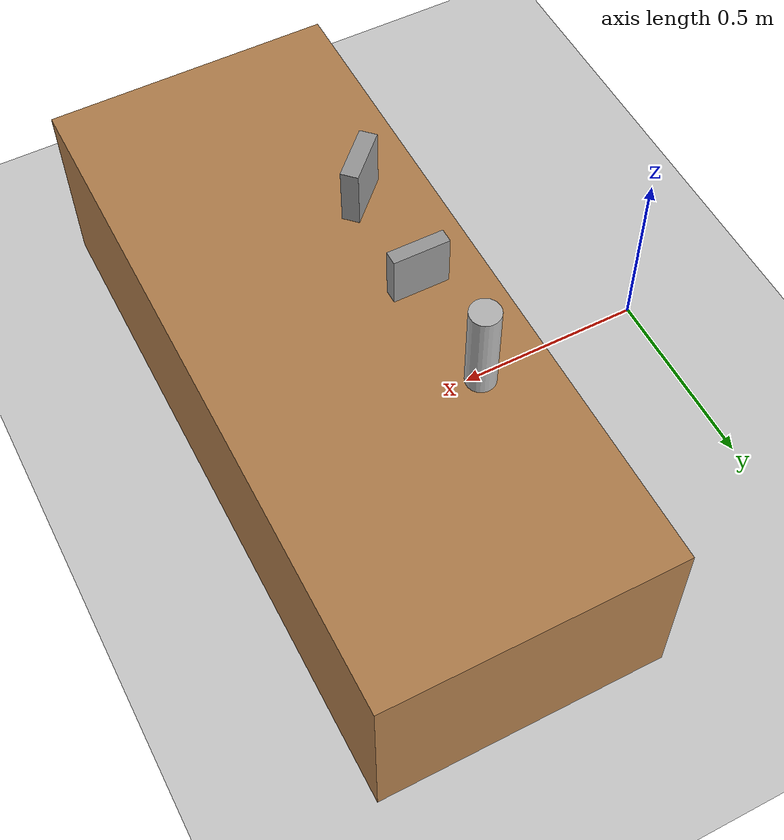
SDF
<sdf version="1.3">
 <world name="default">
  <light name="sun" type="directional">
   <pose>0.000000 0.000000 10.000000 0.000000 0.000000 0.000000</pose>
   <diffuse>0.800000 0.800000 0.800000 1.000000</diffuse>
   <specular>0.100000 0.100000 0.100000 1.000000</specular>
   <attenuation>
    <range>1000.000000</range>
    <constant>0.900000</constant>
    <linear>0.010000</linear>
    <quadratic>0.001000</quadratic>
   </attenuation>
   <direction>-0.500000 0.500000 -1.000000</direction>
  </light>
  <model name="ground_plane">
   <static>1</static>
   <link name="link">
    <collision name="collision">
     <geometry>
      <plane><normal>0.000000 0.000000 1.000000</normal><size>100.000000 100.000000</size></plane>
     </geometry>
     <surface><friction><ode><mu>100.000000</mu><mu2>50.000000</mu2></ode></friction></surface>
    </collision>
    <visual name="visual">
     <cast_shadows>0</cast_shadows>
     <geometry>
      <plane><normal>0.000000 0.000000 1.000000</normal><size>100.000000 100.000000</size></plane>
     </geometry>
     <material>
      <script><uri>file://media/materials/scripts/gazebo.material</uri><name>Gazebo/Grey</name></script>
     </material>
    </visual>
    <velocity_decay><linear>0.000000</linear><angular>0.000000</angular></velocity_decay>
   </link>
  </model>
  <physics type="ode">
   <update_rate>1000.000000</update_rate>
   <gravity>0.000000 0.000000 -9.800000</gravity>
  </physics>
  <scene>
   <ambient>0.200000 0.200000 0.200000 1.000000</ambient>
   <background>0.700000 0.700000 0.700000 1.000000</background>
   <shadows>1</shadows>
  </scene>
  <model name="table_SUTURO">
   <static>1</static>
   <link name="link">
    <pose>0.850000 0.000000 0.250000 0.000000 0.000000 0.000000</pose>
    <collision name="surface"><geometry><box><size>0.750000 1.800000 0.500000</size></box></geometry></collision>
    <visual name="visual1">
     <geometry><box><size>0.750000 1.800000 0.500000</size></box></geometry>
     <material>
      <script><uri>file://media/materials/scripts/gazebo.material</uri><name>Gazebo/Wood</name></script>
     </material>
    </visual>
    <velocity_decay><linear>0.000000</linear><angular>0.000000</angular></velocity_decay>
   </link>
  </model>
  <model name="unit_box_1">
   <pose>0.6500000 0.000000 0.571600 0.000000 0.000000 0.000000</pose>
   <link name="link">
    <inertial>
     <mass>0.090000</mass>
     <inertia>
      <ixx>0.000580</ixx>
      <ixy>0.000000</ixy>
      <ixz>0.000000</ixz>
      <iyy>0.000580</iyy>
      <iyz>0.000000</iyz>
      <izz>0.000190</izz>
     </inertia>
    </inertial>
    <collision name="collision">
     <geometry><box><size>0.1450000 0.036000 0.143000</size></box></geometry>
     <surface>
      <contact><ode><kp>1000000.000000</kp><kd>1.000000</kd></ode></contact>
      <friction><ode><mu>500.000000</mu><mu2>500.000000</mu2></ode></friction>
     </surface>
    </collision>
    <visual name="visual">
     <geometry><box><size>0.1450000 0.036000 0.1430000</size></box></geometry>
     <material>
      <script><uri>file://media/materials/scripts/gazebo.material</uri><name>Gazebo/Grey</name></script>
     </material>
    </visual>
    <velocity_decay><linear>0.000000</linear><angular>0.000000</angular></velocity_decay>
   </link>
   <static>0</static>
  </model>
  <model name="beer_1">
   <link name="link">
    <pose>0.650000 0.300000 0.62600 0.000000 0.000000 0.000000</pose>
    <inertial>
     <mass>0.090000</mass>
     <inertia>
      <ixx>0.000580</ixx>
      <ixy>0.000000</ixy>
      <ixz>0.000000</ixz>
      <iyy>0.000580</iyy>
      <iyz>0.000000</iyz>
      <izz>0.000190</izz>
     </inertia>
    </inertial>
    <collision name="collision">
     <geometry><cylinder><radius>0.037500</radius><length>0.250000</length></cylinder></geometry>
     <surface>
      <contact><ode><kp>1000000.000000</kp><kd>1.000000</kd></ode></contact>
      <friction><ode><mu>500.000000</mu><mu2>500.000000</mu2></ode></friction>
     </surface>
    </collision>
    <visual name="visual">
     <geometry><cylinder><radius>0.037500</radius><length>0.250000</length></cylinder></geometry>
     <material>
      <script>
       <uri>model://beer/materials/scripts</uri>
       <uri>model://beer/materials/textures</uri>
       <name>Beer/Diffuse</name>
      </script>
     </material>
    </visual>
    <velocity_decay><linear>0.000000</linear><angular>0.000000</angular></velocity_decay>
   </link>
   <static>0</static>
  </model>
  <model name="unit_box_2">
   <pose>0.650000 -0.300000 0.581000 0.000000 0.000000 0.7853982</pose>
   <link name="link">
    <inertial>
     <mass>0.090000</mass>
     <inertia>
      <ixx>0.000580</ixx>
      <ixy>0.000000</ixy>
      <ixz>0.000000</ixz>
      <iyy>0.000580</iyy>
      <iyz>0.000000</iyz>
      <izz>0.000190</izz>
     </inertia>
    </inertial>
    <collision name="collision">
     <geometry><box><size>0.1450000 0.045000 0.160000</size></box></geometry>
     <surface>
      <contact><ode><kp>1000000.000000</kp><kd>1.000000</kd></ode></contact>
      <friction><ode><mu>500.000000</mu><mu2>500.000000</mu2></ode></friction>
     </surface>
    </collision>
    <visual name="visual">
     <geometry><box><size>0.1450000 0.045000 0.160000</size></box></geometry>
     <material>
      <script><uri>file://media/materials/scripts/gazebo.material</uri><name>Gazebo/Grey</name></script>
     </material>
    </visual>
    <velocity_decay><linear>0.000000</linear><angular>0.000000</angular></velocity_decay>
   </link>
   <static>0</static>
  </model>
 </world>
</sdf>
